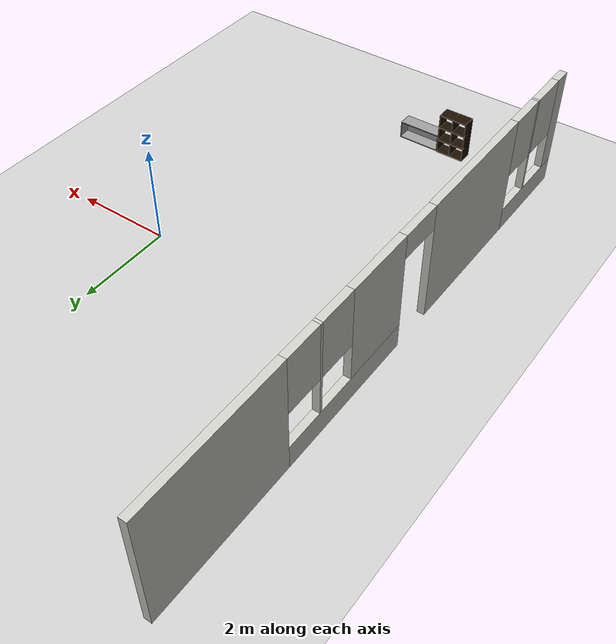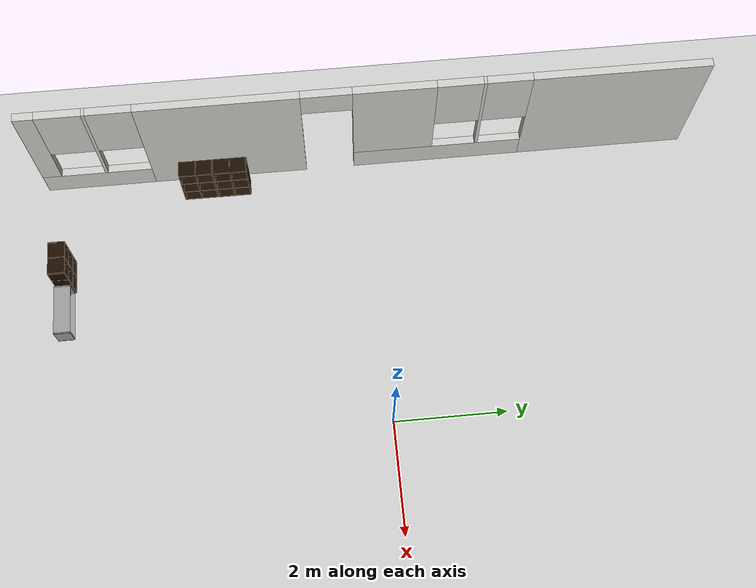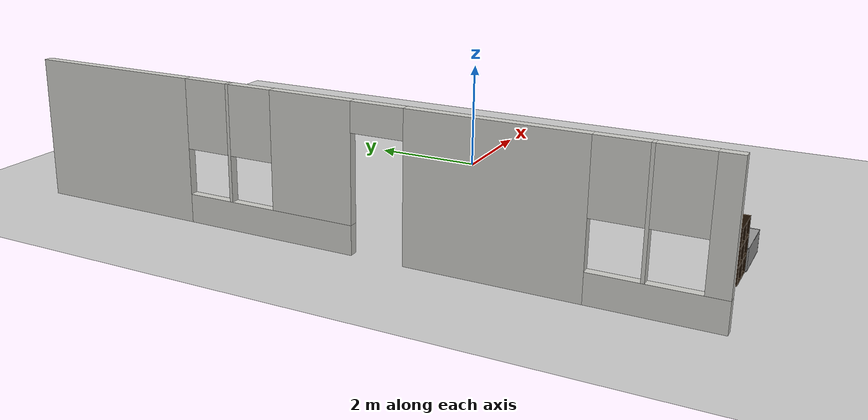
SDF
<sdf version="1.6">
 <world name="default">
  <model name="ground_plane">
   <static>1</static>
   <link name="link">
    <collision name="collision">
     <geometry><plane><normal>0 0 1</normal><size>100 100</size></plane></geometry>
     <surface><friction><ode><mu>100</mu><mu2>50</mu2></ode></friction></surface>
    </collision>
    <visual name="visual">
     <cast_shadows>0</cast_shadows>
     <geometry><plane><normal>0 0 1</normal><size>100 100</size></plane></geometry>
     <material>
      <script><uri>file://media/materials/scripts/gazebo.material</uri><name>Gazebo/Grey</name></script>
     </material>
    </visual>
   </link>
  </model>
  <model name="wall_short_window_door_tiles">
   <pose>-5.1617 -0.004721 0 0 -0 0</pose>
   <link name="Wall_0">
    <pose>0 -0 0 0 -0 -1.5708</pose>
    <visual name="Wall_0_Visual_0">
     <pose>-4.43927 0 1.25 0 -0 0</pose>
     <geometry><box><size>3.12146 0.15 2.5</size></box></geometry>
     <material>
      <script><uri>file://media/materials/scripts/gazebo.material</uri><name>Gazebo/CeilingTiled</name></script>
      <ambient>1 1 1 1</ambient>
     </material>
     <meta><layer>0</layer></meta>
    </visual>
    <collision name="Wall_0_Collision_0">
     <geometry><box><size>3.12146 0.15 2.5</size></box></geometry>
     <pose>-4.43927 0 1.25 0 -0 0</pose>
    </collision>
    <visual name="Wall_0_Visual_1">
     <pose>2.5658 0 1.25 0 -0 0</pose>
     <geometry><box><size>2.8509 0.15 2.5</size></box></geometry>
     <material>
      <script><uri>file://media/materials/scripts/gazebo.material</uri><name>Gazebo/CeilingTiled</name></script>
      <ambient>1 1 1 1</ambient>
     </material>
     <meta><layer>0</layer></meta>
    </visual>
    <collision name="Wall_0_Collision_1">
     <geometry><box><size>2.8509 0.15 2.5</size></box></geometry>
     <pose>2.5658 0 1.25 0 -0 0</pose>
    </collision>
    <visual name="Wall_0_Visual_2">
     <pose>-1.31909 0 0.25 0 -0 0</pose>
     <geometry><box><size>3.11889 0.15 0.5</size></box></geometry>
     <material>
      <script><uri>file://media/materials/scripts/gazebo.material</uri><name>Gazebo/CeilingTiled</name></script>
      <ambient>1 1 1 1</ambient>
     </material>
     <meta><layer>0</layer></meta>
    </visual>
    <collision name="Wall_0_Collision_2">
     <geometry><box><size>3.11889 0.15 0.5</size></box></geometry>
     <pose>-1.31909 0 0.25 0 -0 0</pose>
    </collision>
    <visual name="Wall_0_Visual_3">
     <pose>4.99563 0 0.25 0 -0 0</pose>
     <geometry><box><size>2.00875 0.15 0.5</size></box></geometry>
     <material>
      <script><uri>file://media/materials/scripts/gazebo.material</uri><name>Gazebo/CeilingTiled</name></script>
      <ambient>1 1 1 1</ambient>
     </material>
     <meta><layer>0</layer></meta>
    </visual>
    <collision name="Wall_0_Collision_3">
     <geometry><box><size>2.00875 0.15 0.5</size></box></geometry>
     <pose>4.99563 0 0.25 0 -0 0</pose>
    </collision>
    <visual name="Wall_0_Visual_4">
     <pose>-2.05062 0 1.5 0 -0 0</pose>
     <geometry><box><size>0.055833 0.15 2</size></box></geometry>
     <material>
      <script><uri>file://media/materials/scripts/gazebo.material</uri><name>Gazebo/CeilingTiled</name></script>
      <ambient>1 1 1 1</ambient>
     </material>
     <meta><layer>0</layer></meta>
    </visual>
    <collision name="Wall_0_Collision_4">
     <geometry><box><size>0.055833 0.15 2</size></box></geometry>
     <pose>-2.05062 0 1.5 0 -0 0</pose>
    </collision>
    <visual name="Wall_0_Visual_5">
     <pose>-0.491177 0 1.5 0 -0 0</pose>
     <geometry><box><size>1.46306 0.15 2</size></box></geometry>
     <material>
      <script><uri>file://media/materials/scripts/gazebo.material</uri><name>Gazebo/CeilingTiled</name></script>
      <ambient>1 1 1 1</ambient>
     </material>
     <meta><layer>0</layer></meta>
    </visual>
    <collision name="Wall_0_Collision_5">
     <geometry><box><size>1.46306 0.15 2</size></box></geometry>
     <pose>-0.491177 0 1.5 0 -0 0</pose>
    </collision>
    <visual name="Wall_0_Visual_6">
     <pose>-0.491177 0 1.5 0 -0 0</pose>
     <geometry><box><size>1.46306 0.15 2</size></box></geometry>
     <material>
      <script><uri>file://media/materials/scripts/gazebo.material</uri><name>Gazebo/CeilingTiled</name></script>
      <ambient>1 1 1 1</ambient>
     </material>
     <meta><layer>0</layer></meta>
    </visual>
    <collision name="Wall_0_Collision_6">
     <geometry><box><size>1.46306 0.15 2</size></box></geometry>
     <pose>-0.491177 0 1.5 0 -0 0</pose>
    </collision>
    <visual name="Wall_0_Visual_7">
     <pose>4.81917 0 1.5 0 -0 0</pose>
     <geometry><box><size>0.055833 0.15 2</size></box></geometry>
     <material>
      <script><uri>file://media/materials/scripts/gazebo.material</uri><name>Gazebo/CeilingTiled</name></script>
      <ambient>1 1 1 1</ambient>
     </material>
     <meta><layer>0</layer></meta>
    </visual>
    <collision name="Wall_0_Collision_7">
     <geometry><box><size>0.055833 0.15 2</size></box></geometry>
     <pose>4.81917 0 1.5 0 -0 0</pose>
    </collision>
    <visual name="Wall_0_Visual_8">
     <pose>5.82354 0 1.5 0 -0 0</pose>
     <geometry><box><size>0.352917 0.15 2</size></box></geometry>
     <material>
      <script><uri>file://media/materials/scripts/gazebo.material</uri><name>Gazebo/CeilingTiled</name></script>
      <ambient>1 1 1 1</ambient>
     </material>
     <meta><layer>0</layer></meta>
    </visual>
    <collision name="Wall_0_Collision_8">
     <geometry><box><size>0.352917 0.15 2</size></box></geometry>
     <pose>5.82354 0 1.5 0 -0 0</pose>
    </collision>
    <visual name="Wall_0_Visual_9">
     <pose>-2.47854 0 1.9 0 -0 0</pose>
     <geometry><box><size>0.8 0.15 1.2</size></box></geometry>
     <material>
      <script><uri>file://media/materials/scripts/gazebo.material</uri><name>Gazebo/CeilingTiled</name></script>
      <ambient>1 1 1 1</ambient>
     </material>
     <meta><layer>0</layer></meta>
    </visual>
    <collision name="Wall_0_Collision_9">
     <geometry><box><size>0.8 0.15 1.2</size></box></geometry>
     <pose>-2.47854 0 1.9 0 -0 0</pose>
    </collision>
    <visual name="Wall_0_Visual_10">
     <pose>4.39125 0 1.9 0 -0 0</pose>
     <geometry><box><size>0.8 0.15 1.2</size></box></geometry>
     <material>
      <script><uri>file://media/materials/scripts/gazebo.material</uri><name>Gazebo/CeilingTiled</name></script>
      <ambient>1 1 1 1</ambient>
     </material>
     <meta><layer>0</layer></meta>
    </visual>
    <collision name="Wall_0_Collision_10">
     <geometry><box><size>0.8 0.15 1.2</size></box></geometry>
     <pose>4.39125 0 1.9 0 -0 0</pose>
    </collision>
    <visual name="Wall_0_Visual_11">
     <pose>-1.62271 0 1.9 0 -0 0</pose>
     <geometry><box><size>0.8 0.15 1.2</size></box></geometry>
     <material>
      <script><uri>file://media/materials/scripts/gazebo.material</uri><name>Gazebo/CeilingTiled</name></script>
      <ambient>1 1 1 1</ambient>
     </material>
     <meta><layer>0</layer></meta>
    </visual>
    <collision name="Wall_0_Collision_11">
     <geometry><box><size>0.8 0.15 1.2</size></box></geometry>
     <pose>-1.62271 0 1.9 0 -0 0</pose>
    </collision>
    <visual name="Wall_0_Visual_12">
     <pose>5.24708 0 1.9 0 -0 0</pose>
     <geometry><box><size>0.8 0.15 1.2</size></box></geometry>
     <material>
      <script><uri>file://media/materials/scripts/gazebo.material</uri><name>Gazebo/CeilingTiled</name></script>
      <ambient>1 1 1 1</ambient>
     </material>
     <meta><layer>0</layer></meta>
    </visual>
    <collision name="Wall_0_Collision_12">
     <geometry><box><size>0.8 0.15 1.2</size></box></geometry>
     <pose>5.24708 0 1.9 0 -0 0</pose>
    </collision>
    <visual name="Wall_0_Visual_13">
     <pose>0.690354 0 2.25 0 -0 0</pose>
     <geometry><box><size>0.9 0.15 0.5</size></box></geometry>
     <material>
      <script><uri>file://media/materials/scripts/gazebo.material</uri><name>Gazebo/CeilingTiled</name></script>
      <ambient>1 1 1 1</ambient>
     </material>
     <meta><layer>0</layer></meta>
    </visual>
    <collision name="Wall_0_Collision_13">
     <geometry><box><size>0.9 0.15 0.5</size></box></geometry>
     <pose>0.690354 0 2.25 0 -0 0</pose>
    </collision>
    <visual name="Wall_0_Visual_14">
     <pose>0.690354 0 2.25 0 -0 0</pose>
     <geometry><box><size>0.9 0.15 0.5</size></box></geometry>
     <material>
      <script><uri>file://media/materials/scripts/gazebo.material</uri><name>Gazebo/CeilingTiled</name></script>
      <ambient>1 1 1 1</ambient>
     </material>
     <meta><layer>0</layer></meta>
    </visual>
    <collision name="Wall_0_Collision_14">
     <geometry><box><size>0.9 0.15 0.5</size></box></geometry>
     <pose>0.690354 0 2.25 0 -0 0</pose>
    </collision>
   </link>
   <static>1</static>
  </model>
  <model name="Wall_Cabinet_36x15W_0">
   <link name="Wall_0">
    <pose>0 0 0.01 0 -0 0</pose>
    <inertial>
     <mass>1.9796</mass>
     <inertia><ixx>0.0145</ixx><iyy>0.1511</iyy><izz>0.1367</izz><ixy>0</ixy><ixz>0</ixz><iyz>0</iyz></inertia>
    </inertial>
    <collision name="Wall_0_Collision"><geometry><box><size>0.91 0.296 0.02</size></box></geometry></collision>
    <visual name="Wall_0_Visual">
     <geometry><box><size>0.91 0.296 0.02</size></box></geometry>
     <material>
      <script><uri>file://media/materials/scripts/gazebo.material</uri><name>Gazebo/Grey</name></script>
      <ambient>1 1 1 1</ambient>
     </material>
    </visual>
   </link>
   <joint name="0_2" type="fixed">
    <pose>-0.455 0 0 0 -0 0</pose>
    <parent>Wall_2</parent>
    <child>Wall_0</child>
    <axis>
     <xyz>0 0 1</xyz>
     <use_parent_model_frame>0</use_parent_model_frame>
     <limit><lower>-1e+16</lower><upper>1e+16</upper></limit>
    </axis>
   </joint>
   <joint name="0_4" type="fixed">
    <pose>0.455 0 0 0 -0 0</pose>
    <parent>Wall_4</parent>
    <child>Wall_0</child>
    <axis>
     <xyz>0 0 1</xyz>
     <use_parent_model_frame>0</use_parent_model_frame>
     <limit><lower>-1e+16</lower><upper>1e+16</upper></limit>
    </axis>
   </joint>
   <joint name="0_8" type="fixed">
    <pose>0 -0.148 0 0 -0 0</pose>
    <parent>Wall_8</parent>
    <child>Wall_0</child>
    <axis>
     <xyz>0 0 1</xyz>
     <use_parent_model_frame>0</use_parent_model_frame>
     <limit><lower>-1e+16</lower><upper>1e+16</upper></limit>
    </axis>
   </joint>
   <link name="Wall_2">
    <pose>-0.445 0 0.192 0 -0 0</pose>
    <inertial>
     <mass>0.8353</mass>
     <inertia><ixx>0.0061</ixx><iyy>0.0164</iyy><izz>0.0103</izz><ixy>0</ixy><ixz>0</ixz><iyz>0</iyz></inertia>
    </inertial>
    <collision name="Wall_2_Collision"><geometry><box><size>0.02 0.296 0.384</size></box></geometry></collision>
    <visual name="Wall_2_Visual">
     <geometry><box><size>0.02 0.296 0.384</size></box></geometry>
     <material>
      <script><uri>file://media/materials/scripts/gazebo.material</uri><name>Gazebo/Grey</name></script>
      <ambient>1 1 1 1</ambient>
     </material>
    </visual>
   </link>
   <link name="Wall_4">
    <pose>0.445 0 0.192 0 -0 0</pose>
    <inertial>
     <mass>0.8353</mass>
     <inertia><ixx>0.0061</ixx><iyy>0.0164</iyy><izz>0.0103</izz><ixy>0</ixy><ixz>0</ixz><iyz>0</iyz></inertia>
    </inertial>
    <collision name="Wall_4_Collision"><geometry><box><size>0.02 0.296 0.384</size></box></geometry></collision>
    <visual name="Wall_4_Visual">
     <geometry><box><size>0.02 0.296 0.384</size></box></geometry>
     <material>
      <script><uri>file://media/materials/scripts/gazebo.material</uri><name>Gazebo/Grey</name></script>
      <ambient>1 1 1 1</ambient>
     </material>
    </visual>
   </link>
   <link name="Wall_6">
    <pose>0 0 0.374 0 -0 0</pose>
    <inertial>
     <mass>1.9796</mass>
     <inertia><ixx>0.0145</ixx><iyy>0.1511</iyy><izz>0.1367</izz><ixy>0</ixy><ixz>0</ixz><iyz>0</iyz></inertia>
    </inertial>
    <collision name="Wall_6_Collision"><geometry><box><size>0.91 0.296 0.02</size></box></geometry></collision>
    <visual name="Wall_6_Visual">
     <geometry><box><size>0.91 0.296 0.02</size></box></geometry>
     <material>
      <script><uri>file://media/materials/scripts/gazebo.material</uri><name>Gazebo/Grey</name></script>
      <ambient>1 1 1 1</ambient>
     </material>
    </visual>
   </link>
   <joint name="6_2" type="fixed">
    <pose>-0.455 0 0 0 -0 0</pose>
    <parent>Wall_2</parent>
    <child>Wall_6</child>
    <axis>
     <xyz>0 0 1</xyz>
     <use_parent_model_frame>0</use_parent_model_frame>
     <limit><lower>-1e+16</lower><upper>1e+16</upper></limit>
    </axis>
   </joint>
   <joint name="6_4" type="fixed">
    <pose>0.455 0 0 0 -0 0</pose>
    <parent>Wall_4</parent>
    <child>Wall_6</child>
    <axis>
     <xyz>0 0 1</xyz>
     <use_parent_model_frame>0</use_parent_model_frame>
     <limit><lower>-1e+16</lower><upper>1e+16</upper></limit>
    </axis>
   </joint>
   <joint name="6_8" type="fixed">
    <pose>0 -0.148 0 0 -0 0</pose>
    <parent>Wall_8</parent>
    <child>Wall_6</child>
    <axis>
     <xyz>0 0 1</xyz>
     <use_parent_model_frame>0</use_parent_model_frame>
     <limit><lower>-1e+16</lower><upper>1e+16</upper></limit>
    </axis>
   </joint>
   <link name="Wall_8">
    <pose>0 -0.138 0.19 0 -0 0</pose>
    <inertial>
     <mass>2.5302</mass>
     <inertia><ixx>0.0305</ixx><iyy>0.1732</iyy><izz>0.2035</izz><ixy>0</ixy><ixz>0</ixz><iyz>0</iyz></inertia>
    </inertial>
    <collision name="Wall_8_Collision"><geometry><box><size>0.906 0.02 0.38</size></box></geometry></collision>
    <visual name="Wall_8_Visual">
     <geometry><box><size>0.906 0.02 0.38</size></box></geometry>
     <material>
      <script><uri>file://media/materials/scripts/gazebo.material</uri><name>Gazebo/Grey</name></script>
      <ambient>1 1 1 1</ambient>
     </material>
    </visual>
   </link>
   <joint name="8_2" type="fixed">
    <pose>-0.453 0 0 0 -0 0</pose>
    <parent>Wall_2</parent>
    <child>Wall_8</child>
    <axis>
     <xyz>0 1 0</xyz>
     <use_parent_model_frame>0</use_parent_model_frame>
     <limit><lower>-1e+16</lower><upper>1e+16</upper></limit>
    </axis>
   </joint>
   <joint name="8_4" type="fixed">
    <pose>0.453 0 0 0 -0 0</pose>
    <parent>Wall_4</parent>
    <child>Wall_8</child>
    <axis>
     <xyz>0 1 0</xyz>
     <use_parent_model_frame>0</use_parent_model_frame>
     <limit><lower>-1e+16</lower><upper>1e+16</upper></limit>
    </axis>
   </joint>
   <static>1</static>
   <pose>-2.48426 -5.67054 0 0 -0 0</pose>
  </model>
  <model name="6_Cube_StorageE">
   <link name="Wall_0">
    <pose>0 0 0.01 0 -0 0</pose>
    <inertial>
     <mass>1.6201</mass>
     <inertia><ixx>0.0119</ixx><iyy>0.0631</iyy><izz>0.0513</izz><ixy>0</ixy><ixz>0</ixz><iyz>0</iyz></inertia>
    </inertial>
    <collision name="Wall_0_Collision"><geometry><box><size>0.616 0.296 0.02</size></box></geometry></collision>
    <visual name="Wall_0_Visual">
     <geometry><box><size>0.616 0.296 0.02</size></box></geometry>
     <material>
      <script><uri>file://media/materials/scripts/gazebo.material</uri><name>Gazebo/Grey</name></script>
      <ambient>0.105882 0.0509804 0 1</ambient>
     </material>
    </visual>
   </link>
   <joint name="0_2" type="fixed">
    <pose>-0.308 0 0 0 -0 0</pose>
    <parent>Wall_2</parent>
    <child>Wall_0</child>
    <axis>
     <xyz>1 0 0</xyz>
     <use_parent_model_frame>0</use_parent_model_frame>
     <limit><lower>-1e+16</lower><upper>1e+16</upper></limit>
    </axis>
   </joint>
   <joint name="0_12" type="fixed">
    <parent>Wall_12</parent>
    <child>Wall_0</child>
    <axis>
     <xyz>0 0 1</xyz>
     <use_parent_model_frame>0</use_parent_model_frame>
     <limit><lower>-1e+16</lower><upper>1e+16</upper></limit>
    </axis>
   </joint>
   <joint name="0_4" type="fixed">
    <pose>0.308 0 0 0 -0 0</pose>
    <parent>Wall_4</parent>
    <child>Wall_0</child>
    <axis>
     <xyz>1 0 0</xyz>
     <use_parent_model_frame>0</use_parent_model_frame>
     <limit><lower>-1e+16</lower><upper>1e+16</upper></limit>
    </axis>
   </joint>
   <link name="Wall_10">
    <pose>0 0 0.61 0 -0 0</pose>
    <inertial>
     <mass>1.6201</mass>
     <inertia><ixx>0.0119</ixx><iyy>0.0631</iyy><izz>0.0513</izz><ixy>0</ixy><ixz>0</ixz><iyz>0</iyz></inertia>
    </inertial>
    <collision name="Wall_10_Collision"><geometry><box><size>0.616 0.296 0.02</size></box></geometry></collision>
    <visual name="Wall_10_Visual">
     <geometry><box><size>0.616 0.296 0.02</size></box></geometry>
     <material>
      <script><uri>file://media/materials/scripts/gazebo.material</uri><name>Gazebo/Grey</name></script>
      <ambient>0.105882 0.0509804 0 1</ambient>
     </material>
    </visual>
   </link>
   <joint name="10_2" type="fixed">
    <pose>-0.308 0 0 0 -0 0</pose>
    <parent>Wall_2</parent>
    <child>Wall_10</child>
    <axis>
     <xyz>1 0 0</xyz>
     <use_parent_model_frame>0</use_parent_model_frame>
     <limit><lower>-1e+16</lower><upper>1e+16</upper></limit>
    </axis>
   </joint>
   <joint name="10_12" type="fixed">
    <parent>Wall_12</parent>
    <child>Wall_10</child>
    <axis>
     <xyz>0 0 1</xyz>
     <use_parent_model_frame>0</use_parent_model_frame>
     <limit><lower>-1e+16</lower><upper>1e+16</upper></limit>
    </axis>
   </joint>
   <joint name="10_4" type="fixed">
    <pose>0.308 0 0 0 -0 0</pose>
    <parent>Wall_4</parent>
    <child>Wall_10</child>
    <axis>
     <xyz>1 0 0</xyz>
     <use_parent_model_frame>0</use_parent_model_frame>
     <limit><lower>-1e+16</lower><upper>1e+16</upper></limit>
    </axis>
   </joint>
   <link name="Wall_12">
    <pose>0 0 0.4575 0 -0 0</pose>
    <inertial>
     <mass>2.4065</mass>
     <inertia><ixx>0.0177</ixx><iyy>0.1855</iyy><izz>0.168</izz><ixy>0</ixy><ixz>0</ixz><iyz>0</iyz></inertia>
    </inertial>
    <collision name="Wall_12_Collision"><geometry><box><size>0.02 0.296 0.915</size></box></geometry></collision>
    <visual name="Wall_12_Visual">
     <geometry><box><size>0.02 0.296 0.915</size></box></geometry>
     <material>
      <script><uri>file://media/materials/scripts/gazebo.material</uri><name>Gazebo/Grey</name></script>
      <ambient>0.105882 0.0509804 0 1</ambient>
     </material>
    </visual>
   </link>
   <link name="Wall_2">
    <pose>-0.298 0 0.4575 0 -0 0</pose>
    <inertial>
     <mass>2.4065</mass>
     <inertia><ixx>0.0177</ixx><iyy>0.1855</iyy><izz>0.168</izz><ixy>0</ixy><ixz>0</ixz><iyz>0</iyz></inertia>
    </inertial>
    <collision name="Wall_2_Collision"><geometry><box><size>0.02 0.296 0.915</size></box></geometry></collision>
    <visual name="Wall_2_Visual">
     <geometry><box><size>0.02 0.296 0.915</size></box></geometry>
     <material>
      <script><uri>file://media/materials/scripts/gazebo.material</uri><name>Gazebo/Grey</name></script>
      <ambient>0.105882 0.0509804 0 1</ambient>
     </material>
    </visual>
   </link>
   <link name="Wall_4">
    <pose>0.298 0 0.4575 0 -0 0</pose>
    <inertial>
     <mass>2.4065</mass>
     <inertia><ixx>0.0177</ixx><iyy>0.1855</iyy><izz>0.168</izz><ixy>0</ixy><ixz>0</ixz><iyz>0</iyz></inertia>
    </inertial>
    <collision name="Wall_4_Collision"><geometry><box><size>0.02 0.296 0.915</size></box></geometry></collision>
    <visual name="Wall_4_Visual">
     <geometry><box><size>0.02 0.296 0.915</size></box></geometry>
     <material>
      <script><uri>file://media/materials/scripts/gazebo.material</uri><name>Gazebo/Grey</name></script>
      <ambient>0.105882 0.0509804 0 1</ambient>
     </material>
    </visual>
   </link>
   <link name="Wall_6">
    <pose>0 0 0.905 0 -0 0</pose>
    <inertial>
     <mass>1.6201</mass>
     <inertia><ixx>0.0119</ixx><iyy>0.0631</iyy><izz>0.0513</izz><ixy>0</ixy><ixz>0</ixz><iyz>0</iyz></inertia>
    </inertial>
    <collision name="Wall_6_Collision"><geometry><box><size>0.616 0.296 0.02</size></box></geometry></collision>
    <visual name="Wall_6_Visual">
     <geometry><box><size>0.616 0.296 0.02</size></box></geometry>
     <material>
      <script><uri>file://media/materials/scripts/gazebo.material</uri><name>Gazebo/Grey</name></script>
      <ambient>0.105882 0.0509804 0 1</ambient>
     </material>
    </visual>
   </link>
   <joint name="6_2" type="fixed">
    <pose>-0.308 0 0 0 -0 0</pose>
    <parent>Wall_2</parent>
    <child>Wall_6</child>
    <axis>
     <xyz>2 0 0</xyz>
     <use_parent_model_frame>0</use_parent_model_frame>
     <limit><lower>-1e+16</lower><upper>1e+16</upper></limit>
    </axis>
   </joint>
   <joint name="6_12" type="fixed">
    <parent>Wall_12</parent>
    <child>Wall_6</child>
    <axis>
     <xyz>0 0 1</xyz>
     <use_parent_model_frame>0</use_parent_model_frame>
     <limit><lower>-1e+16</lower><upper>1e+16</upper></limit>
    </axis>
   </joint>
   <joint name="6_4" type="fixed">
    <pose>0.308 0 0 0 -0 0</pose>
    <parent>Wall_4</parent>
    <child>Wall_6</child>
    <axis>
     <xyz>1 0 0</xyz>
     <use_parent_model_frame>0</use_parent_model_frame>
     <limit><lower>-1e+16</lower><upper>1e+16</upper></limit>
    </axis>
   </joint>
   <link name="Wall_8">
    <pose>0 0 0.305 0 -0 0</pose>
    <inertial>
     <mass>1.6201</mass>
     <inertia><ixx>0.0119</ixx><iyy>0.0631</iyy><izz>0.0513</izz><ixy>0</ixy><ixz>0</ixz><iyz>0</iyz></inertia>
    </inertial>
    <collision name="Wall_8_Collision"><geometry><box><size>0.616 0.296 0.02</size></box></geometry></collision>
    <visual name="Wall_8_Visual">
     <geometry><box><size>0.616 0.296 0.02</size></box></geometry>
     <material>
      <script><uri>file://media/materials/scripts/gazebo.material</uri><name>Gazebo/Grey</name></script>
      <ambient>0.105882 0.0509804 0 1</ambient>
     </material>
    </visual>
   </link>
   <joint name="8_2" type="fixed">
    <pose>-0.308 0 0 0 -0 0</pose>
    <parent>Wall_2</parent>
    <child>Wall_8</child>
    <axis>
     <xyz>1 0 0</xyz>
     <use_parent_model_frame>0</use_parent_model_frame>
     <limit><lower>-1e+16</lower><upper>1e+16</upper></limit>
    </axis>
   </joint>
   <joint name="8_12" type="fixed">
    <parent>Wall_12</parent>
    <child>Wall_8</child>
    <axis>
     <xyz>0 0 1</xyz>
     <use_parent_model_frame>0</use_parent_model_frame>
     <limit><lower>-1e+16</lower><upper>1e+16</upper></limit>
    </axis>
   </joint>
   <joint name="8_4" type="fixed">
    <pose>0.308 0 0 0 -0 0</pose>
    <parent>Wall_4</parent>
    <child>Wall_8</child>
    <axis>
     <xyz>1 0 0</xyz>
     <use_parent_model_frame>0</use_parent_model_frame>
     <limit><lower>-1e+16</lower><upper>1e+16</upper></limit>
    </axis>
   </joint>
   <static>1</static>
   <pose>-3.24822 -5.64839 0 0 -0 0</pose>
  </model>
  <model name="6_Cube_StorageE_1">
   <link name="Wall_0">
    <pose>0 0 0.01 0 -0 0</pose>
    <inertial>
     <mass>1.6201</mass>
     <inertia><ixx>0.0119</ixx><iyy>0.0631</iyy><izz>0.0513</izz><ixy>0</ixy><ixz>0</ixz><iyz>0</iyz></inertia>
    </inertial>
    <collision name="Wall_0_Collision"><geometry><box><size>0.616 0.296 0.02</size></box></geometry></collision>
    <visual name="Wall_0_Visual">
     <geometry><box><size>0.616 0.296 0.02</size></box></geometry>
     <material>
      <script><uri>file://media/materials/scripts/gazebo.material</uri><name>Gazebo/Grey</name></script>
      <ambient>0.105882 0.0509804 0 1</ambient>
     </material>
    </visual>
   </link>
   <joint name="0_2" type="fixed">
    <pose>-0.308 0 0 0 -0 0</pose>
    <parent>Wall_2</parent>
    <child>Wall_0</child>
    <axis>
     <xyz>1 0 0</xyz>
     <use_parent_model_frame>0</use_parent_model_frame>
     <limit><lower>-1e+16</lower><upper>1e+16</upper></limit>
    </axis>
   </joint>
   <joint name="0_12" type="fixed">
    <parent>Wall_12</parent>
    <child>Wall_0</child>
    <axis>
     <xyz>0 0 1</xyz>
     <use_parent_model_frame>0</use_parent_model_frame>
     <limit><lower>-1e+16</lower><upper>1e+16</upper></limit>
    </axis>
   </joint>
   <joint name="0_4" type="fixed">
    <pose>0.308 0 0 0 -0 0</pose>
    <parent>Wall_4</parent>
    <child>Wall_0</child>
    <axis>
     <xyz>1 0 0</xyz>
     <use_parent_model_frame>0</use_parent_model_frame>
     <limit><lower>-1e+16</lower><upper>1e+16</upper></limit>
    </axis>
   </joint>
   <link name="Wall_10">
    <pose>0 0 0.61 0 -0 0</pose>
    <inertial>
     <mass>1.6201</mass>
     <inertia><ixx>0.0119</ixx><iyy>0.0631</iyy><izz>0.0513</izz><ixy>0</ixy><ixz>0</ixz><iyz>0</iyz></inertia>
    </inertial>
    <collision name="Wall_10_Collision"><geometry><box><size>0.616 0.296 0.02</size></box></geometry></collision>
    <visual name="Wall_10_Visual">
     <geometry><box><size>0.616 0.296 0.02</size></box></geometry>
     <material>
      <script><uri>file://media/materials/scripts/gazebo.material</uri><name>Gazebo/Grey</name></script>
      <ambient>0.105882 0.0509804 0 1</ambient>
     </material>
    </visual>
   </link>
   <joint name="10_2" type="fixed">
    <pose>-0.308 0 0 0 -0 0</pose>
    <parent>Wall_2</parent>
    <child>Wall_10</child>
    <axis>
     <xyz>1 0 0</xyz>
     <use_parent_model_frame>0</use_parent_model_frame>
     <limit><lower>-1e+16</lower><upper>1e+16</upper></limit>
    </axis>
   </joint>
   <joint name="10_12" type="fixed">
    <parent>Wall_12</parent>
    <child>Wall_10</child>
    <axis>
     <xyz>0 0 1</xyz>
     <use_parent_model_frame>0</use_parent_model_frame>
     <limit><lower>-1e+16</lower><upper>1e+16</upper></limit>
    </axis>
   </joint>
   <joint name="10_4" type="fixed">
    <pose>0.308 0 0 0 -0 0</pose>
    <parent>Wall_4</parent>
    <child>Wall_10</child>
    <axis>
     <xyz>1 0 0</xyz>
     <use_parent_model_frame>0</use_parent_model_frame>
     <limit><lower>-1e+16</lower><upper>1e+16</upper></limit>
    </axis>
   </joint>
   <link name="Wall_12">
    <pose>0 0 0.4575 0 -0 0</pose>
    <inertial>
     <mass>2.4065</mass>
     <inertia><ixx>0.0177</ixx><iyy>0.1855</iyy><izz>0.168</izz><ixy>0</ixy><ixz>0</ixz><iyz>0</iyz></inertia>
    </inertial>
    <collision name="Wall_12_Collision"><geometry><box><size>0.02 0.296 0.915</size></box></geometry></collision>
    <visual name="Wall_12_Visual">
     <geometry><box><size>0.02 0.296 0.915</size></box></geometry>
     <material>
      <script><uri>file://media/materials/scripts/gazebo.material</uri><name>Gazebo/Grey</name></script>
      <ambient>0.105882 0.0509804 0 1</ambient>
     </material>
    </visual>
   </link>
   <link name="Wall_2">
    <pose>-0.298 0 0.4575 0 -0 0</pose>
    <inertial>
     <mass>2.4065</mass>
     <inertia><ixx>0.0177</ixx><iyy>0.1855</iyy><izz>0.168</izz><ixy>0</ixy><ixz>0</ixz><iyz>0</iyz></inertia>
    </inertial>
    <collision name="Wall_2_Collision"><geometry><box><size>0.02 0.296 0.915</size></box></geometry></collision>
    <visual name="Wall_2_Visual">
     <geometry><box><size>0.02 0.296 0.915</size></box></geometry>
     <material>
      <script><uri>file://media/materials/scripts/gazebo.material</uri><name>Gazebo/Grey</name></script>
      <ambient>0.105882 0.0509804 0 1</ambient>
     </material>
    </visual>
   </link>
   <link name="Wall_4">
    <pose>0.298 0 0.4575 0 -0 0</pose>
    <inertial>
     <mass>2.4065</mass>
     <inertia><ixx>0.0177</ixx><iyy>0.1855</iyy><izz>0.168</izz><ixy>0</ixy><ixz>0</ixz><iyz>0</iyz></inertia>
    </inertial>
    <collision name="Wall_4_Collision"><geometry><box><size>0.02 0.296 0.915</size></box></geometry></collision>
    <visual name="Wall_4_Visual">
     <geometry><box><size>0.02 0.296 0.915</size></box></geometry>
     <material>
      <script><uri>file://media/materials/scripts/gazebo.material</uri><name>Gazebo/Grey</name></script>
      <ambient>0.105882 0.0509804 0 1</ambient>
     </material>
    </visual>
   </link>
   <link name="Wall_6">
    <pose>0 0 0.905 0 -0 0</pose>
    <inertial>
     <mass>1.6201</mass>
     <inertia><ixx>0.0119</ixx><iyy>0.0631</iyy><izz>0.0513</izz><ixy>0</ixy><ixz>0</ixz><iyz>0</iyz></inertia>
    </inertial>
    <collision name="Wall_6_Collision"><geometry><box><size>0.616 0.296 0.02</size></box></geometry></collision>
    <visual name="Wall_6_Visual">
     <geometry><box><size>0.616 0.296 0.02</size></box></geometry>
     <material>
      <script><uri>file://media/materials/scripts/gazebo.material</uri><name>Gazebo/Grey</name></script>
      <ambient>0.105882 0.0509804 0 1</ambient>
     </material>
    </visual>
   </link>
   <joint name="6_2" type="fixed">
    <pose>-0.308 0 0 0 -0 0</pose>
    <parent>Wall_2</parent>
    <child>Wall_6</child>
    <axis>
     <xyz>2 0 0</xyz>
     <use_parent_model_frame>0</use_parent_model_frame>
     <limit><lower>-1e+16</lower><upper>1e+16</upper></limit>
    </axis>
   </joint>
   <joint name="6_12" type="fixed">
    <parent>Wall_12</parent>
    <child>Wall_6</child>
    <axis>
     <xyz>0 0 1</xyz>
     <use_parent_model_frame>0</use_parent_model_frame>
     <limit><lower>-1e+16</lower><upper>1e+16</upper></limit>
    </axis>
   </joint>
   <joint name="6_4" type="fixed">
    <pose>0.308 0 0 0 -0 0</pose>
    <parent>Wall_4</parent>
    <child>Wall_6</child>
    <axis>
     <xyz>1 0 0</xyz>
     <use_parent_model_frame>0</use_parent_model_frame>
     <limit><lower>-1e+16</lower><upper>1e+16</upper></limit>
    </axis>
   </joint>
   <link name="Wall_8">
    <pose>0 0 0.305 0 -0 0</pose>
    <inertial>
     <mass>1.6201</mass>
     <inertia><ixx>0.0119</ixx><iyy>0.0631</iyy><izz>0.0513</izz><ixy>0</ixy><ixz>0</ixz><iyz>0</iyz></inertia>
    </inertial>
    <collision name="Wall_8_Collision"><geometry><box><size>0.616 0.296 0.02</size></box></geometry></collision>
    <visual name="Wall_8_Visual">
     <geometry><box><size>0.616 0.296 0.02</size></box></geometry>
     <material>
      <script><uri>file://media/materials/scripts/gazebo.material</uri><name>Gazebo/Grey</name></script>
      <ambient>0.105882 0.0509804 0 1</ambient>
     </material>
    </visual>
   </link>
   <joint name="8_2" type="fixed">
    <pose>-0.308 0 0 0 -0 0</pose>
    <parent>Wall_2</parent>
    <child>Wall_8</child>
    <axis>
     <xyz>1 0 0</xyz>
     <use_parent_model_frame>0</use_parent_model_frame>
     <limit><lower>-1e+16</lower><upper>1e+16</upper></limit>
    </axis>
   </joint>
   <joint name="8_12" type="fixed">
    <parent>Wall_12</parent>
    <child>Wall_8</child>
    <axis>
     <xyz>0 0 1</xyz>
     <use_parent_model_frame>0</use_parent_model_frame>
     <limit><lower>-1e+16</lower><upper>1e+16</upper></limit>
    </axis>
   </joint>
   <joint name="8_4" type="fixed">
    <pose>0.308 0 0 0 -0 0</pose>
    <parent>Wall_4</parent>
    <child>Wall_8</child>
    <axis>
     <xyz>1 0 0</xyz>
     <use_parent_model_frame>0</use_parent_model_frame>
     <limit><lower>-1e+16</lower><upper>1e+16</upper></limit>
    </axis>
   </joint>
   <static>1</static>
   <pose>-4.8 -3.14862 0 0 -0 1.5708</pose>
  </model>
  <model name="6_Cube_StorageE_1_clone">
   <link name="Wall_0">
    <pose>0 0 0.01 0 -0 0</pose>
    <inertial>
     <mass>1.6201</mass>
     <inertia><ixx>0.0119</ixx><iyy>0.0631</iyy><izz>0.0513</izz><ixy>0</ixy><ixz>0</ixz><iyz>0</iyz></inertia>
    </inertial>
    <collision name="Wall_0_Collision"><geometry><box><size>0.616 0.296 0.02</size></box></geometry></collision>
    <visual name="Wall_0_Visual">
     <geometry><box><size>0.616 0.296 0.02</size></box></geometry>
     <material>
      <script><uri>file://media/materials/scripts/gazebo.material</uri><name>Gazebo/Grey</name></script>
      <ambient>0.105882 0.0509804 0 1</ambient>
     </material>
    </visual>
   </link>
   <joint name="0_2" type="fixed">
    <pose>-0.308 0 0 0 -0 0</pose>
    <parent>Wall_2</parent>
    <child>Wall_0</child>
    <axis>
     <xyz>1 0 0</xyz>
     <use_parent_model_frame>0</use_parent_model_frame>
     <limit><lower>-1e+16</lower><upper>1e+16</upper></limit>
    </axis>
   </joint>
   <joint name="0_12" type="fixed">
    <parent>Wall_12</parent>
    <child>Wall_0</child>
    <axis>
     <xyz>0 0 1</xyz>
     <use_parent_model_frame>0</use_parent_model_frame>
     <limit><lower>-1e+16</lower><upper>1e+16</upper></limit>
    </axis>
   </joint>
   <joint name="0_4" type="fixed">
    <pose>0.308 0 0 0 -0 0</pose>
    <parent>Wall_4</parent>
    <child>Wall_0</child>
    <axis>
     <xyz>1 0 0</xyz>
     <use_parent_model_frame>0</use_parent_model_frame>
     <limit><lower>-1e+16</lower><upper>1e+16</upper></limit>
    </axis>
   </joint>
   <link name="Wall_10">
    <pose>0 0 0.61 0 -0 0</pose>
    <inertial>
     <mass>1.6201</mass>
     <inertia><ixx>0.0119</ixx><iyy>0.0631</iyy><izz>0.0513</izz><ixy>0</ixy><ixz>0</ixz><iyz>0</iyz></inertia>
    </inertial>
    <collision name="Wall_10_Collision"><geometry><box><size>0.616 0.296 0.02</size></box></geometry></collision>
    <visual name="Wall_10_Visual">
     <geometry><box><size>0.616 0.296 0.02</size></box></geometry>
     <material>
      <script><uri>file://media/materials/scripts/gazebo.material</uri><name>Gazebo/Grey</name></script>
      <ambient>0.105882 0.0509804 0 1</ambient>
     </material>
    </visual>
   </link>
   <joint name="10_2" type="fixed">
    <pose>-0.308 0 0 0 -0 0</pose>
    <parent>Wall_2</parent>
    <child>Wall_10</child>
    <axis>
     <xyz>1 0 0</xyz>
     <use_parent_model_frame>0</use_parent_model_frame>
     <limit><lower>-1e+16</lower><upper>1e+16</upper></limit>
    </axis>
   </joint>
   <joint name="10_12" type="fixed">
    <parent>Wall_12</parent>
    <child>Wall_10</child>
    <axis>
     <xyz>0 0 1</xyz>
     <use_parent_model_frame>0</use_parent_model_frame>
     <limit><lower>-1e+16</lower><upper>1e+16</upper></limit>
    </axis>
   </joint>
   <joint name="10_4" type="fixed">
    <pose>0.308 0 0 0 -0 0</pose>
    <parent>Wall_4</parent>
    <child>Wall_10</child>
    <axis>
     <xyz>1 0 0</xyz>
     <use_parent_model_frame>0</use_parent_model_frame>
     <limit><lower>-1e+16</lower><upper>1e+16</upper></limit>
    </axis>
   </joint>
   <link name="Wall_12">
    <pose>0 0 0.4575 0 -0 0</pose>
    <inertial>
     <mass>2.4065</mass>
     <inertia><ixx>0.0177</ixx><iyy>0.1855</iyy><izz>0.168</izz><ixy>0</ixy><ixz>0</ixz><iyz>0</iyz></inertia>
    </inertial>
    <collision name="Wall_12_Collision"><geometry><box><size>0.02 0.296 0.915</size></box></geometry></collision>
    <visual name="Wall_12_Visual">
     <geometry><box><size>0.02 0.296 0.915</size></box></geometry>
     <material>
      <script><uri>file://media/materials/scripts/gazebo.material</uri><name>Gazebo/Grey</name></script>
      <ambient>0.105882 0.0509804 0 1</ambient>
     </material>
    </visual>
   </link>
   <link name="Wall_2">
    <pose>-0.298 0 0.4575 0 -0 0</pose>
    <inertial>
     <mass>2.4065</mass>
     <inertia><ixx>0.0177</ixx><iyy>0.1855</iyy><izz>0.168</izz><ixy>0</ixy><ixz>0</ixz><iyz>0</iyz></inertia>
    </inertial>
    <collision name="Wall_2_Collision"><geometry><box><size>0.02 0.296 0.915</size></box></geometry></collision>
    <visual name="Wall_2_Visual">
     <geometry><box><size>0.02 0.296 0.915</size></box></geometry>
     <material>
      <script><uri>file://media/materials/scripts/gazebo.material</uri><name>Gazebo/Grey</name></script>
      <ambient>0.105882 0.0509804 0 1</ambient>
     </material>
    </visual>
   </link>
   <link name="Wall_4">
    <pose>0.298 0 0.4575 0 -0 0</pose>
    <inertial>
     <mass>2.4065</mass>
     <inertia><ixx>0.0177</ixx><iyy>0.1855</iyy><izz>0.168</izz><ixy>0</ixy><ixz>0</ixz><iyz>0</iyz></inertia>
    </inertial>
    <collision name="Wall_4_Collision"><geometry><box><size>0.02 0.296 0.915</size></box></geometry></collision>
    <visual name="Wall_4_Visual">
     <geometry><box><size>0.02 0.296 0.915</size></box></geometry>
     <material>
      <script><uri>file://media/materials/scripts/gazebo.material</uri><name>Gazebo/Grey</name></script>
      <ambient>0.105882 0.0509804 0 1</ambient>
     </material>
    </visual>
   </link>
   <link name="Wall_6">
    <pose>0 0 0.905 0 -0 0</pose>
    <inertial>
     <mass>1.6201</mass>
     <inertia><ixx>0.0119</ixx><iyy>0.0631</iyy><izz>0.0513</izz><ixy>0</ixy><ixz>0</ixz><iyz>0</iyz></inertia>
    </inertial>
    <collision name="Wall_6_Collision"><geometry><box><size>0.616 0.296 0.02</size></box></geometry></collision>
    <visual name="Wall_6_Visual">
     <geometry><box><size>0.616 0.296 0.02</size></box></geometry>
     <material>
      <script><uri>file://media/materials/scripts/gazebo.material</uri><name>Gazebo/Grey</name></script>
      <ambient>0.105882 0.0509804 0 1</ambient>
     </material>
    </visual>
   </link>
   <joint name="6_2" type="fixed">
    <pose>-0.308 0 0 0 -0 0</pose>
    <parent>Wall_2</parent>
    <child>Wall_6</child>
    <axis>
     <xyz>2 0 0</xyz>
     <use_parent_model_frame>0</use_parent_model_frame>
     <limit><lower>-1e+16</lower><upper>1e+16</upper></limit>
    </axis>
   </joint>
   <joint name="6_12" type="fixed">
    <parent>Wall_12</parent>
    <child>Wall_6</child>
    <axis>
     <xyz>0 0 1</xyz>
     <use_parent_model_frame>0</use_parent_model_frame>
     <limit><lower>-1e+16</lower><upper>1e+16</upper></limit>
    </axis>
   </joint>
   <joint name="6_4" type="fixed">
    <pose>0.308 0 0 0 -0 0</pose>
    <parent>Wall_4</parent>
    <child>Wall_6</child>
    <axis>
     <xyz>1 0 0</xyz>
     <use_parent_model_frame>0</use_parent_model_frame>
     <limit><lower>-1e+16</lower><upper>1e+16</upper></limit>
    </axis>
   </joint>
   <link name="Wall_8">
    <pose>0 0 0.305 0 -0 0</pose>
    <inertial>
     <mass>1.6201</mass>
     <inertia><ixx>0.0119</ixx><iyy>0.0631</iyy><izz>0.0513</izz><ixy>0</ixy><ixz>0</ixz><iyz>0</iyz></inertia>
    </inertial>
    <collision name="Wall_8_Collision"><geometry><box><size>0.616 0.296 0.02</size></box></geometry></collision>
    <visual name="Wall_8_Visual">
     <geometry><box><size>0.616 0.296 0.02</size></box></geometry>
     <material>
      <script><uri>file://media/materials/scripts/gazebo.material</uri><name>Gazebo/Grey</name></script>
      <ambient>0.105882 0.0509804 0 1</ambient>
     </material>
    </visual>
   </link>
   <joint name="8_2" type="fixed">
    <pose>-0.308 0 0 0 -0 0</pose>
    <parent>Wall_2</parent>
    <child>Wall_8</child>
    <axis>
     <xyz>1 0 0</xyz>
     <use_parent_model_frame>0</use_parent_model_frame>
     <limit><lower>-1e+16</lower><upper>1e+16</upper></limit>
    </axis>
   </joint>
   <joint name="8_12" type="fixed">
    <parent>Wall_12</parent>
    <child>Wall_8</child>
    <axis>
     <xyz>0 0 1</xyz>
     <use_parent_model_frame>0</use_parent_model_frame>
     <limit><lower>-1e+16</lower><upper>1e+16</upper></limit>
    </axis>
   </joint>
   <joint name="8_4" type="fixed">
    <pose>0.308 0 0 0 -0 0</pose>
    <parent>Wall_4</parent>
    <child>Wall_8</child>
    <axis>
     <xyz>1 0 0</xyz>
     <use_parent_model_frame>0</use_parent_model_frame>
     <limit><lower>-1e+16</lower><upper>1e+16</upper></limit>
    </axis>
   </joint>
   <static>1</static>
   <pose>-4.79903 -2.52851 0 0 -0 1.5708</pose>
  </model>
 </world>
</sdf>
